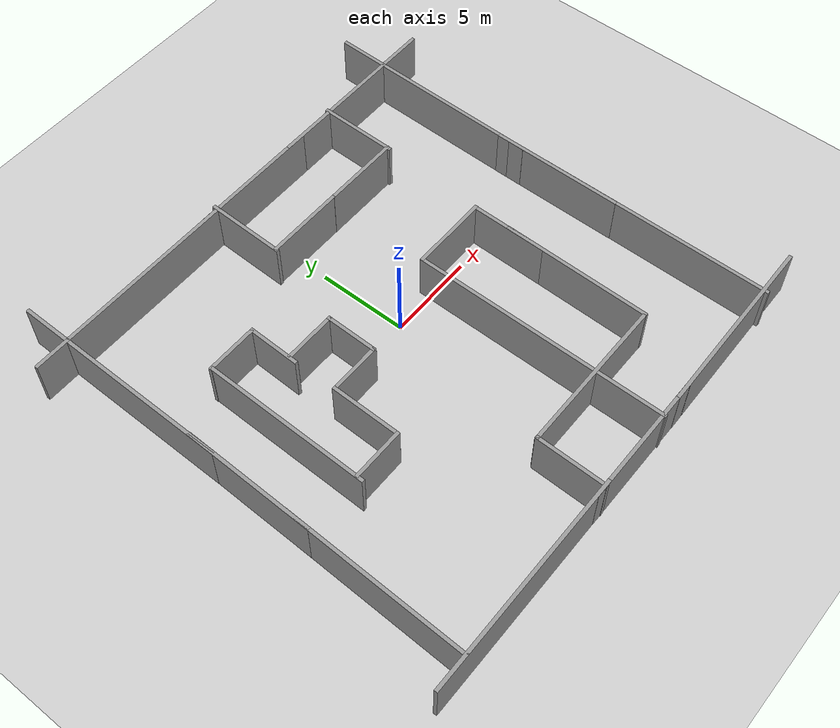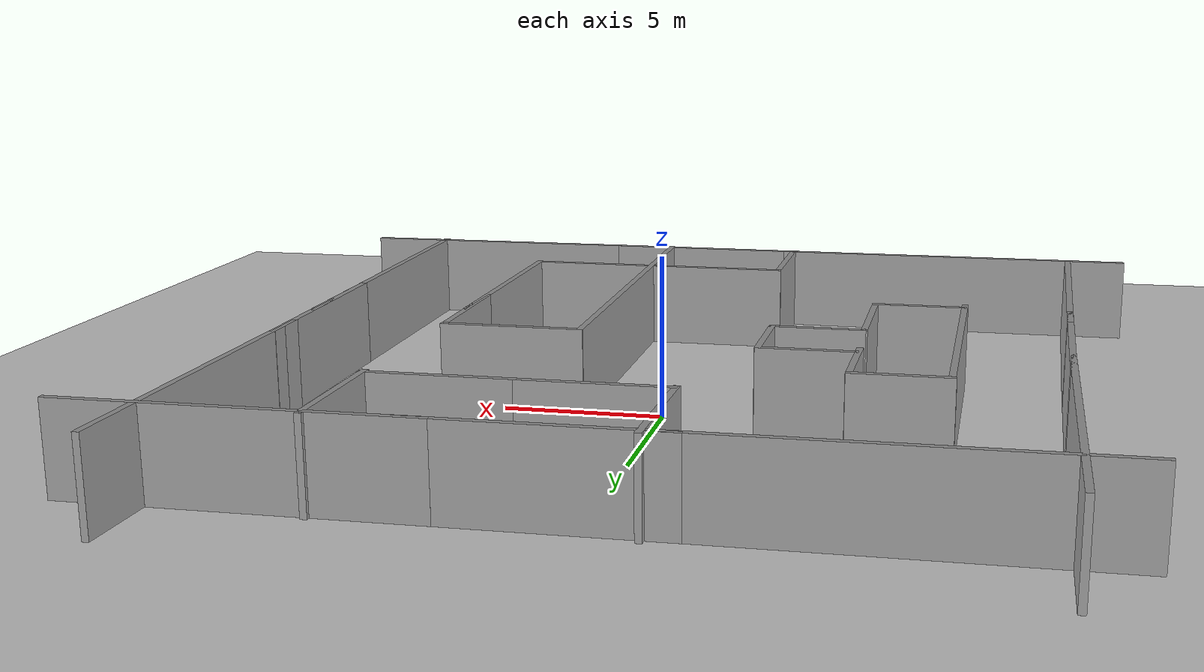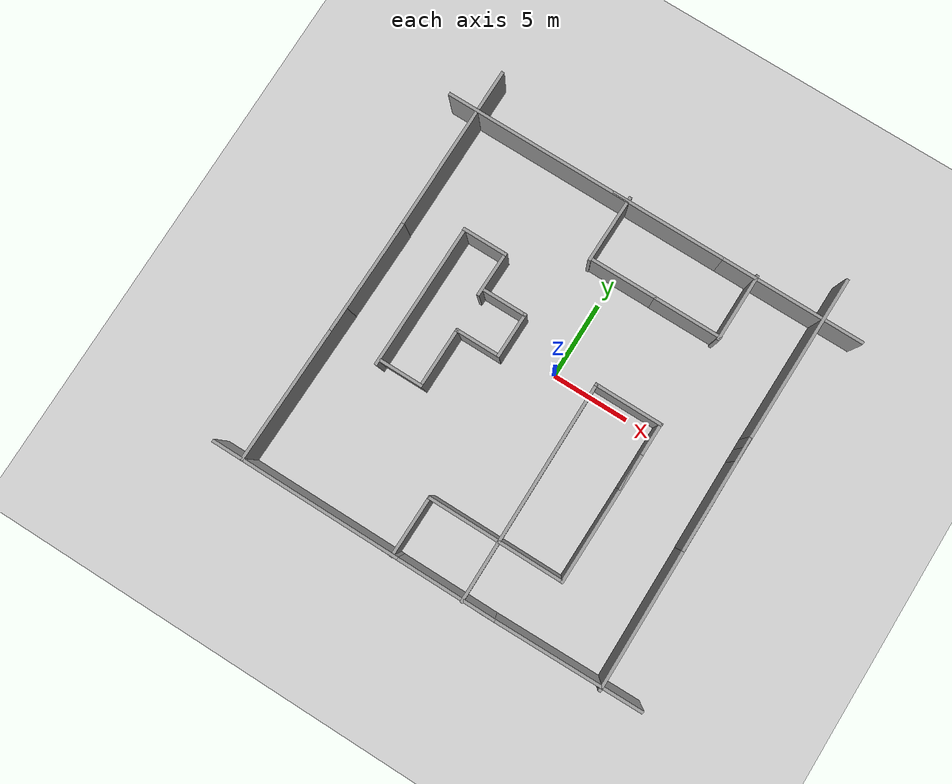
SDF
<sdf version="1.4">
 <world name="default">
  <light name="sun" type="directional">
   <pose>0 0 10 0 -0 0</pose>
   <diffuse>0.8 0.8 0.8 1</diffuse>
   <specular>0.2 0.2 0.2 1</specular>
   <attenuation>
    <range>1000</range>
    <constant>0.9</constant>
    <linear>0.01</linear>
    <quadratic>0.001</quadratic>
   </attenuation>
   <direction>-0.5 0.1 -0.9</direction>
  </light>
  <model name="ground_plane">
   <static>1</static>
   <link name="link">
    <collision name="collision">
     <geometry><plane><normal>0 0 1</normal><size>100 100</size></plane></geometry>
     <surface><friction><ode><mu>100</mu><mu2>50</mu2></ode></friction></surface>
    </collision>
    <visual name="visual">
     <cast_shadows>0</cast_shadows>
     <geometry><plane><normal>0 0 1</normal><size>100 100</size></plane></geometry>
     <material>
      <script><uri>file://media/materials/scripts/gazebo.material</uri><name>Gazebo/Grey</name></script>
     </material>
    </visual>
    <velocity_decay><linear>0</linear><angular>0</angular></velocity_decay>
   </link>
  </model>
  <physics type="ode">
   <max_step_size>0.001</max_step_size>
   <real_time_factor>1</real_time_factor>
   <real_time_update_rate>1000</real_time_update_rate>
   <gravity>0 0 -9.8</gravity>
  </physics>
  <scene><ambient>0.4 0.4 0.4 1</ambient><background>0.7 0.7 0.7 1</background><shadows>1</shadows></scene>
  <spherical_coordinates>
   <surface_model>EARTH_WGS84</surface_model>
   <latitude_deg>0</latitude_deg>
   <longitude_deg>0</longitude_deg>
   <elevation>0</elevation>
   <heading_deg>0</heading_deg>
  </spherical_coordinates>
  <model name="grey_wall">
   <static>1</static>
   <link name="link">
    <pose>0 0 1.4 0 -0 0</pose>
    <collision name="collision"><geometry><box><size>12.5 0.2 2.8</size></box></geometry></collision>
    <visual name="visual">
     <cast_shadows>0</cast_shadows>
     <geometry><box><size>12.5 0.2 2.8</size></box></geometry>
     <material>
      <script>
       <uri>model://grey_wall/materials/scripts</uri>
       <uri>model://grey_wall/materials/textures</uri>
       <name>vrc/grey_wall</name>
      </script>
     </material>
    </visual>
    <velocity_decay><linear>0</linear><angular>0</angular></velocity_decay>
   </link>
   <pose>-7.76862 10.679 0 0 -0 0</pose>
  </model>
  <model name="grey_wall_0">
   <static>1</static>
   <link name="link">
    <pose>0 0 1.4 0 -0 0</pose>
    <collision name="collision"><geometry><box><size>7.5 0.2 2.8</size></box></geometry></collision>
    <visual name="visual">
     <cast_shadows>0</cast_shadows>
     <geometry><box><size>7.5 0.2 2.8</size></box></geometry>
     <material>
      <script>
       <uri>model://grey_wall/materials/scripts</uri>
       <uri>model://grey_wall/materials/textures</uri>
       <name>vrc/grey_wall</name>
      </script>
     </material>
    </visual>
    <velocity_decay><linear>0</linear><angular>0</angular></velocity_decay>
   </link>
   <pose>1.08356 10.6863 0 0 -0 0</pose>
  </model>
  <model name="grey_wall_1">
   <static>1</static>
   <link name="link">
    <pose>0 0 1.4 0 -0 0</pose>
    <collision name="collision"><geometry><box><size>10.5 0.2 2.8</size></box></geometry></collision>
    <visual name="visual">
     <cast_shadows>0</cast_shadows>
     <geometry><box><size>10.5 0.2 2.8</size></box></geometry>
     <material>
      <script>
       <uri>model://grey_wall/materials/scripts</uri>
       <uri>model://grey_wall/materials/textures</uri>
       <name>vrc/grey_wall</name>
      </script>
     </material>
    </visual>
    <velocity_decay><linear>0</linear><angular>0</angular></velocity_decay>
   </link>
   <pose>8.96244 10.6871 0 0 -0 0</pose>
  </model>
  <model name="grey_wall_2">
   <static>1</static>
   <link name="link">
    <pose>0 0 1.4 0 -0 0</pose>
    <collision name="collision"><geometry><box><size>12.5 0.2 2.8</size></box></geometry></collision>
    <visual name="visual">
     <cast_shadows>0</cast_shadows>
     <geometry><box><size>12.5 0.2 2.8</size></box></geometry>
     <material>
      <script>
       <uri>model://grey_wall/materials/scripts</uri>
       <uri>model://grey_wall/materials/textures</uri>
       <name>vrc/grey_wall</name>
      </script>
     </material>
    </visual>
    <velocity_decay><linear>0</linear><angular>0</angular></velocity_decay>
   </link>
   <pose>-8.15295 -13.697 0 0 -0 0</pose>
  </model>
  <model name="grey_wall_3">
   <static>1</static>
   <link name="link">
    <pose>0 0 1.4 0 -0 0</pose>
    <collision name="collision"><geometry><box><size>7.5 0.2 2.8</size></box></geometry></collision>
    <visual name="visual">
     <cast_shadows>0</cast_shadows>
     <geometry><box><size>7.5 0.2 2.8</size></box></geometry>
     <material>
      <script>
       <uri>model://grey_wall/materials/scripts</uri>
       <uri>model://grey_wall/materials/textures</uri>
       <name>vrc/grey_wall</name>
      </script>
     </material>
    </visual>
    <velocity_decay><linear>0</linear><angular>0</angular></velocity_decay>
   </link>
   <pose>0.809161 -13.7046 0 0 -0 0</pose>
  </model>
  <model name="grey_wall_4">
   <static>1</static>
   <link name="link">
    <pose>0 0 1.4 0 -0 0</pose>
    <collision name="collision"><geometry><box><size>10.5 0.2 2.8</size></box></geometry></collision>
    <visual name="visual">
     <cast_shadows>0</cast_shadows>
     <geometry><box><size>10.5 0.2 2.8</size></box></geometry>
     <material>
      <script>
       <uri>model://grey_wall/materials/scripts</uri>
       <uri>model://grey_wall/materials/textures</uri>
       <name>vrc/grey_wall</name>
      </script>
     </material>
    </visual>
    <velocity_decay><linear>0</linear><angular>0</angular></velocity_decay>
   </link>
   <pose>8.8964 -13.6468 0 0 -0 0.013142</pose>
  </model>
  <model name="grey_wall_5">
   <static>1</static>
   <link name="link">
    <pose>0 0 1.4 0 -0 0</pose>
    <collision name="collision"><geometry><box><size>12.5 0.2 2.8</size></box></geometry></collision>
    <visual name="visual">
     <cast_shadows>0</cast_shadows>
     <geometry><box><size>12.5 0.2 2.8</size></box></geometry>
     <material>
      <script>
       <uri>model://grey_wall/materials/scripts</uri>
       <uri>model://grey_wall/materials/textures</uri>
       <name>vrc/grey_wall</name>
      </script>
     </material>
    </visual>
    <velocity_decay><linear>0</linear><angular>0</angular></velocity_decay>
   </link>
   <pose>-12.0488 7.23602 0 0 -0 1.56526</pose>
  </model>
  <model name="grey_wall_6">
   <static>1</static>
   <link name="link">
    <pose>0 0 1.4 0 -0 0</pose>
    <collision name="collision"><geometry><box><size>7.5 0.2 2.8</size></box></geometry></collision>
    <visual name="visual">
     <cast_shadows>0</cast_shadows>
     <geometry><box><size>7.5 0.2 2.8</size></box></geometry>
     <material>
      <script>
       <uri>model://grey_wall/materials/scripts</uri>
       <uri>model://grey_wall/materials/textures</uri>
       <name>vrc/grey_wall</name>
      </script>
     </material>
    </visual>
    <velocity_decay><linear>0</linear><angular>0</angular></velocity_decay>
   </link>
   <pose>-12.1199 -1.12372 0 0 -0 1.55275</pose>
  </model>
  <model name="grey_wall_7">
   <static>1</static>
   <link name="link">
    <pose>0 0 1.4 0 -0 0</pose>
    <collision name="collision"><geometry><box><size>10.5 0.2 2.8</size></box></geometry></collision>
    <visual name="visual">
     <cast_shadows>0</cast_shadows>
     <geometry><box><size>10.5 0.2 2.8</size></box></geometry>
     <material>
      <script>
       <uri>model://grey_wall/materials/scripts</uri>
       <uri>model://grey_wall/materials/textures</uri>
       <name>vrc/grey_wall</name>
      </script>
     </material>
    </visual>
    <velocity_decay><linear>0</linear><angular>0</angular></velocity_decay>
   </link>
   <pose>-12.2691 -8.53115 0 0 0 -1.5933</pose>
  </model>
  <model name="grey_wall_8">
   <static>1</static>
   <link name="link">
    <pose>0 0 1.4 0 -0 0</pose>
    <collision name="collision"><geometry><box><size>12.5 0.2 2.8</size></box></geometry></collision>
    <visual name="visual">
     <cast_shadows>0</cast_shadows>
     <geometry><box><size>12.5 0.2 2.8</size></box></geometry>
     <material>
      <script>
       <uri>model://grey_wall/materials/scripts</uri>
       <uri>model://grey_wall/materials/textures</uri>
       <name>vrc/grey_wall</name>
      </script>
     </material>
    </visual>
    <velocity_decay><linear>0</linear><angular>0</angular></velocity_decay>
   </link>
   <pose>11.5253 7.22328 0 0 0 -1.58113</pose>
  </model>
  <model name="grey_wall_9">
   <static>1</static>
   <link name="link">
    <pose>0 0 1.4 0 -0 0</pose>
    <collision name="collision"><geometry><box><size>7.5 0.2 2.8</size></box></geometry></collision>
    <visual name="visual">
     <cast_shadows>0</cast_shadows>
     <geometry><box><size>7.5 0.2 2.8</size></box></geometry>
     <material>
      <script>
       <uri>model://grey_wall/materials/scripts</uri>
       <uri>model://grey_wall/materials/textures</uri>
       <name>vrc/grey_wall</name>
      </script>
     </material>
    </visual>
    <velocity_decay><linear>0</linear><angular>0</angular></velocity_decay>
   </link>
   <pose>11.4711 -1.15151 0 0 -0 1.57111</pose>
  </model>
  <model name="grey_wall_10">
   <static>1</static>
   <link name="link">
    <pose>0 0 1.4 0 -0 0</pose>
    <collision name="collision"><geometry><box><size>13.5 0.2 2.8</size></box></geometry></collision>
    <visual name="visual">
     <cast_shadows>0</cast_shadows>
     <geometry><box><size>13.5 0.2 2.8</size></box></geometry>
     <material>
      <script>
       <uri>model://grey_wall/materials/scripts</uri>
       <uri>model://grey_wall/materials/textures</uri>
       <name>vrc/grey_wall</name>
      </script>
     </material>
    </visual>
    <velocity_decay><linear>0</linear><angular>0</angular></velocity_decay>
   </link>
   <pose>11.4851 -7.15291 0 0 0 -1.5695</pose>
  </model>
  <model name="grey_wall_11">
   <static>1</static>
   <link name="link">
    <pose>0 0 1.4 0 -0 0</pose>
    <collision name="collision"><geometry><box><size>4.5 0.2 2.8</size></box></geometry></collision>
    <visual name="visual">
     <cast_shadows>0</cast_shadows>
     <geometry><box><size>4.5 0.2 2.8</size></box></geometry>
     <material>
      <script>
       <uri>model://grey_wall/materials/scripts</uri>
       <uri>model://grey_wall/materials/textures</uri>
       <name>vrc/grey_wall</name>
      </script>
     </material>
    </visual>
    <velocity_decay><linear>0</linear><angular>0</angular></velocity_decay>
   </link>
   <pose>7.03262 8.66462 0 0 -0 1.56246</pose>
  </model>
  <model name="grey_wall_12">
   <static>1</static>
   <link name="link">
    <pose>0 0 1.4 0 -0 0</pose>
    <collision name="collision"><geometry><box><size>4.5 0.2 2.8</size></box></geometry></collision>
    <visual name="visual">
     <cast_shadows>0</cast_shadows>
     <geometry><box><size>4.5 0.2 2.8</size></box></geometry>
     <material>
      <script>
       <uri>model://grey_wall/materials/scripts</uri>
       <uri>model://grey_wall/materials/textures</uri>
       <name>vrc/grey_wall</name>
      </script>
     </material>
    </visual>
    <velocity_decay><linear>0</linear><angular>0</angular></velocity_decay>
   </link>
   <pose>6.71612 -1.61792 0 0 0 -1.57927</pose>
  </model>
  <model name="grey_wall_13">
   <static>1</static>
   <link name="link">
    <pose>0 0 1.4 0 -0 0</pose>
    <collision name="collision"><geometry><box><size>7.5 0.2 2.8</size></box></geometry></collision>
    <visual name="visual">
     <cast_shadows>0</cast_shadows>
     <geometry><box><size>4.5 0.2 2.8</size></box></geometry>
     <material>
      <script>
       <uri>model://grey_wall/materials/scripts</uri>
       <uri>model://grey_wall/materials/textures</uri>
       <name>vrc/grey_wall</name>
      </script>
     </material>
    </visual>
    <velocity_decay><linear>0</linear><angular>0</angular></velocity_decay>
   </link>
   <pose>4.88693 6.63819 0 0 -0 0</pose>
  </model>
  <model name="grey_wall_14">
   <static>1</static>
   <link name="link">
    <pose>0 0 1.4 0 -0 0</pose>
    <collision name="collision"><geometry><box><size>4.5 0.2 2.8</size></box></geometry></collision>
    <visual name="visual">
     <cast_shadows>0</cast_shadows>
     <geometry><box><size>4.5 0.2 2.8</size></box></geometry>
     <material>
      <script>
       <uri>model://grey_wall/materials/scripts</uri>
       <uri>model://grey_wall/materials/textures</uri>
       <name>vrc/grey_wall</name>
      </script>
     </material>
    </visual>
    <velocity_decay><linear>0</linear><angular>0</angular></velocity_decay>
   </link>
   <pose>-1.66785 8.73609 0 0 0 -1.58901</pose>
  </model>
  <model name="grey_wall_15">
   <static>1</static>
   <link name="link">
    <pose>0 0 1.4 0 -0 0</pose>
    <collision name="collision"><geometry><box><size>4.5 0.2 2.8</size></box></geometry></collision>
    <visual name="visual">
     <cast_shadows>0</cast_shadows>
     <geometry><box><size>4.5 0.2 2.8</size></box></geometry>
     <material>
      <script>
       <uri>model://grey_wall/materials/scripts</uri>
       <uri>model://grey_wall/materials/textures</uri>
       <name>vrc/grey_wall</name>
      </script>
     </material>
    </visual>
    <velocity_decay><linear>0</linear><angular>0</angular></velocity_decay>
   </link>
   <pose>4.60281 0.541366 0 0 -0 0</pose>
  </model>
  <model name="grey_wall_16">
   <static>1</static>
   <link name="link">
    <pose>0 0 1.4 0 -0 0</pose>
    <collision name="collision"><geometry><box><size>4.5 0.2 2.8</size></box></geometry></collision>
    <visual name="visual">
     <cast_shadows>0</cast_shadows>
     <geometry><box><size>4.5 0.2 2.8</size></box></geometry>
     <material>
      <script>
       <uri>model://grey_wall/materials/scripts</uri>
       <uri>model://grey_wall/materials/textures</uri>
       <name>vrc/grey_wall</name>
      </script>
     </material>
    </visual>
    <velocity_decay><linear>0</linear><angular>0</angular></velocity_decay>
   </link>
   <pose>0.491146 6.64273 0 0 -0 0</pose>
  </model>
  <model name="grey_wall_17">
   <static>1</static>
   <link name="link">
    <pose>0 0 1.4 0 -0 0</pose>
    <collision name="collision"><geometry><box><size>8.5 0.2 2.8</size></box></geometry></collision>
    <visual name="visual">
     <cast_shadows>0</cast_shadows>
     <geometry><box><size>8.5 0.2 2.8</size></box></geometry>
     <material>
      <script>
       <uri>model://grey_wall/materials/scripts</uri>
       <uri>model://grey_wall/materials/textures</uri>
       <name>vrc/grey_wall</name>
      </script>
     </material>
    </visual>
    <velocity_decay><linear>0</linear><angular>0</angular></velocity_decay>
   </link>
   <pose>6.67186 -5.75937 0 0 0 -1.58389</pose>
  </model>
  <model name="grey_wall_18">
   <static>1</static>
   <link name="link">
    <pose>0 0 1.4 0 -0 0</pose>
    <collision name="collision"><geometry><box><size>4 0.2 2.8</size></box></geometry></collision>
    <visual name="visual">
     <cast_shadows>0</cast_shadows>
     <geometry><box><size>4 0.2 2.8</size></box></geometry>
     <material>
      <script>
       <uri>model://grey_wall/materials/scripts</uri>
       <uri>model://grey_wall/materials/textures</uri>
       <name>vrc/grey_wall</name>
      </script>
     </material>
    </visual>
    <velocity_decay><linear>0</linear><angular>0</angular></velocity_decay>
   </link>
   <pose>-2.22543 -11.8266 0 0 0 -1.58396</pose>
  </model>
  <model name="grey_wall_19">
   <static>1</static>
   <link name="link">
    <pose>0 0 1.4 0 -0 0</pose>
    <collision name="collision"><geometry><box><size>14.5 0.2 2.8</size></box></geometry></collision>
    <visual name="visual">
     <cast_shadows>0</cast_shadows>
     <geometry><box><size>14.5 0.2 2.8</size></box></geometry>
     <material>
      <script>
       <uri>model://grey_wall/materials/scripts</uri>
       <uri>model://grey_wall/materials/textures</uri>
       <name>vrc/grey_wall</name>
      </script>
     </material>
    </visual>
    <velocity_decay><linear>0</linear><angular>0</angular></velocity_decay>
   </link>
   <pose>2.43677 -6.61397 0 0 0 -1.57112</pose>
  </model>
  <model name="grey_wall_20">
   <static>1</static>
   <link name="link">
    <pose>0 0 1.4 0 -0 0</pose>
    <collision name="collision"><geometry><box><size>9 0.2 2.8</size></box></geometry></collision>
    <visual name="visual">
     <cast_shadows>0</cast_shadows>
     <geometry><box><size>9 0.2 2.8</size></box></geometry>
     <material>
      <script>
       <uri>model://grey_wall/materials/scripts</uri>
       <uri>model://grey_wall/materials/textures</uri>
       <name>vrc/grey_wall</name>
      </script>
     </material>
    </visual>
    <velocity_decay><linear>0</linear><angular>0</angular></velocity_decay>
   </link>
   <pose>2.20686 -9.90222 0 0 -0 0</pose>
  </model>
  <model name="grey_wall_21">
   <static>1</static>
   <link name="link">
    <pose>0 0 1.4 0 -0 0</pose>
    <collision name="collision"><geometry><box><size>4 0.2 2.8</size></box></geometry></collision>
    <visual name="visual">
     <cast_shadows>0</cast_shadows>
     <geometry><box><size>4 0.2 2.8</size></box></geometry>
     <material>
      <script>
       <uri>model://grey_wall/materials/scripts</uri>
       <uri>model://grey_wall/materials/textures</uri>
       <name>vrc/grey_wall</name>
      </script>
     </material>
    </visual>
    <velocity_decay><linear>0</linear><angular>0</angular></velocity_decay>
   </link>
   <pose>-6.03087 -2.90371 -0 0 0 -1.58046</pose>
  </model>
  <model name="grey_wall_22">
   <static>1</static>
   <link name="link">
    <pose>0 0 1.4 0 -0 0</pose>
    <collision name="collision"><geometry><box><size>9.5 0.2 2.8</size></box></geometry></collision>
    <visual name="visual">
     <cast_shadows>0</cast_shadows>
     <geometry><box><size>9.5 0.2 2.8</size></box></geometry>
     <material>
      <script>
       <uri>model://grey_wall/materials/scripts</uri>
       <uri>model://grey_wall/materials/textures</uri>
       <name>vrc/grey_wall</name>
      </script>
     </material>
    </visual>
    <velocity_decay><linear>0</linear><angular>0</angular></velocity_decay>
   </link>
   <pose>-8.85681 -0.443382 0 0 0 -1.58005</pose>
  </model>
  <model name="grey_wall_23">
   <static>1</static>
   <link name="link">
    <pose>0 0 1.4 0 -0 0</pose>
    <collision name="collision"><geometry><box><size>3 0.2 2.8</size></box></geometry></collision>
    <visual name="visual">
     <cast_shadows>0</cast_shadows>
     <geometry><box><size>3 0.2 2.8</size></box></geometry>
     <material>
      <script>
       <uri>model://grey_wall/materials/scripts</uri>
       <uri>model://grey_wall/materials/textures</uri>
       <name>vrc/grey_wall</name>
      </script>
     </material>
    </visual>
    <velocity_decay><linear>0</linear><angular>0</angular></velocity_decay>
   </link>
   <pose>-7.43689 4.22945 0 0 -0 0</pose>
  </model>
  <model name="grey_wall_24">
   <static>1</static>
   <link name="link">
    <pose>0 0 1.4 0 -0 0</pose>
    <collision name="collision"><geometry><box><size>3 0.2 2.8</size></box></geometry></collision>
    <visual name="visual">
     <cast_shadows>0</cast_shadows>
     <geometry><box><size>3 0.2 2.8</size></box></geometry>
     <material>
      <script>
       <uri>model://grey_wall/materials/scripts</uri>
       <uri>model://grey_wall/materials/textures</uri>
       <name>vrc/grey_wall</name>
      </script>
     </material>
    </visual>
    <velocity_decay><linear>0</linear><angular>0</angular></velocity_decay>
   </link>
   <pose>-7.4521 -4.80477 0 0 -0 0</pose>
  </model>
  <model name="grey_wall_25">
   <static>1</static>
   <link name="link">
    <pose>0 0 1.4 0 -0 0</pose>
    <collision name="collision"><geometry><box><size>3 0.2 2.8</size></box></geometry></collision>
    <visual name="visual">
     <cast_shadows>0</cast_shadows>
     <geometry><box><size>3 0.2 2.8</size></box></geometry>
     <material>
      <script>
       <uri>model://grey_wall/materials/scripts</uri>
       <uri>model://grey_wall/materials/textures</uri>
       <name>vrc/grey_wall</name>
      </script>
     </material>
    </visual>
    <velocity_decay><linear>0</linear><angular>0</angular></velocity_decay>
   </link>
   <pose>-4.58171 1.80724 0 0 -0 0</pose>
  </model>
  <model name="grey_wall_26">
   <static>1</static>
   <link name="link">
    <pose>0 0 1.4 0 -0 0</pose>
    <collision name="collision"><geometry><box><size>3 0.2 2.8</size></box></geometry></collision>
    <visual name="visual">
     <cast_shadows>0</cast_shadows>
     <geometry><box><size>3 0.2 2.8</size></box></geometry>
     <material>
      <script>
       <uri>model://grey_wall/materials/scripts</uri>
       <uri>model://grey_wall/materials/textures</uri>
       <name>vrc/grey_wall</name>
      </script>
     </material>
    </visual>
    <velocity_decay><linear>0</linear><angular>0</angular></velocity_decay>
   </link>
   <pose>-6.05932 2.82155 0 0 -0 1.55017</pose>
  </model>
  <model name="grey_wall_27">
   <static>1</static>
   <link name="link">
    <pose>0 0 1.4 0 -0 0</pose>
    <collision name="collision"><geometry><box><size>3 0.2 2.8</size></box></geometry></collision>
    <visual name="visual">
     <cast_shadows>0</cast_shadows>
     <geometry><box><size>3 0.2 2.8</size></box></geometry>
     <material>
      <script>
       <uri>model://grey_wall/materials/scripts</uri>
       <uri>model://grey_wall/materials/textures</uri>
       <name>vrc/grey_wall</name>
      </script>
     </material>
    </visual>
    <velocity_decay><linear>0</linear><angular>0</angular></velocity_decay>
   </link>
   <pose>-3.18774 0.403028 0 0 0 -1.58147</pose>
  </model>
  <model name="grey_wall_28">
   <static>1</static>
   <link name="link">
    <pose>0 0 1.4 0 -0 0</pose>
    <collision name="collision"><geometry><box><size>3 0.2 2.8</size></box></geometry></collision>
    <visual name="visual">
     <cast_shadows>0</cast_shadows>
     <geometry><box><size>3 0.2 2.8</size></box></geometry>
     <material>
      <script>
       <uri>model://grey_wall/materials/scripts</uri>
       <uri>model://grey_wall/materials/textures</uri>
       <name>vrc/grey_wall</name>
      </script>
     </material>
    </visual>
    <velocity_decay><linear>0</linear><angular>0</angular></velocity_decay>
   </link>
   <pose>-4.61021 -1.0033 0 0 -0 0</pose>
  </model>
 </world>
</sdf>
